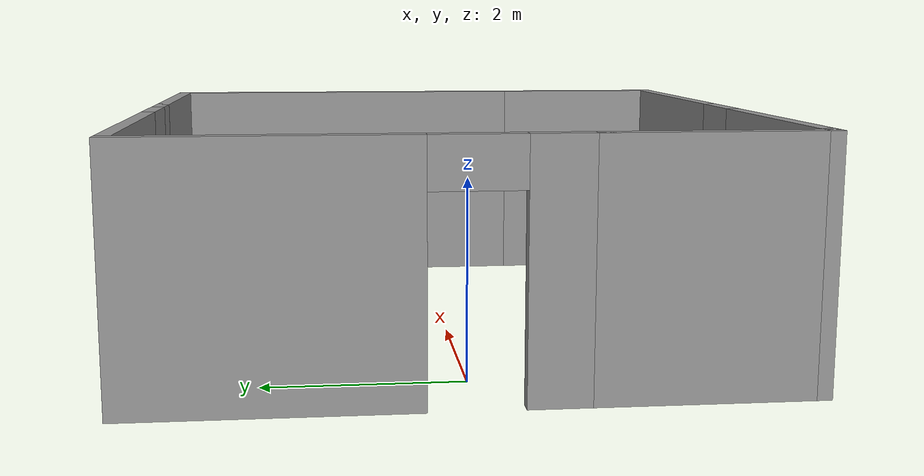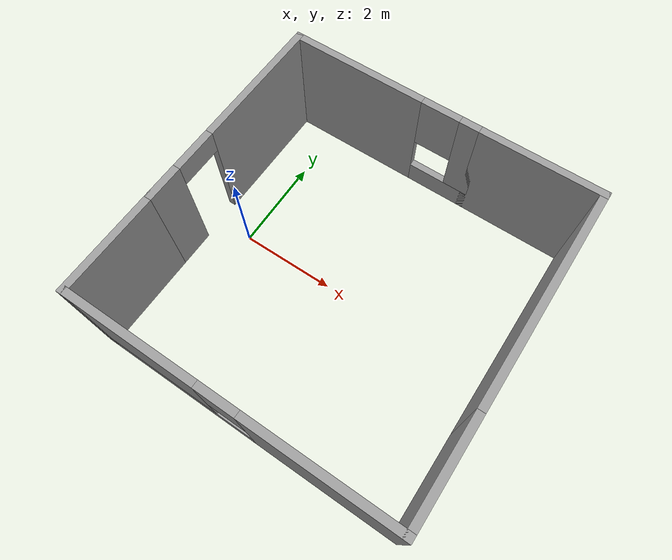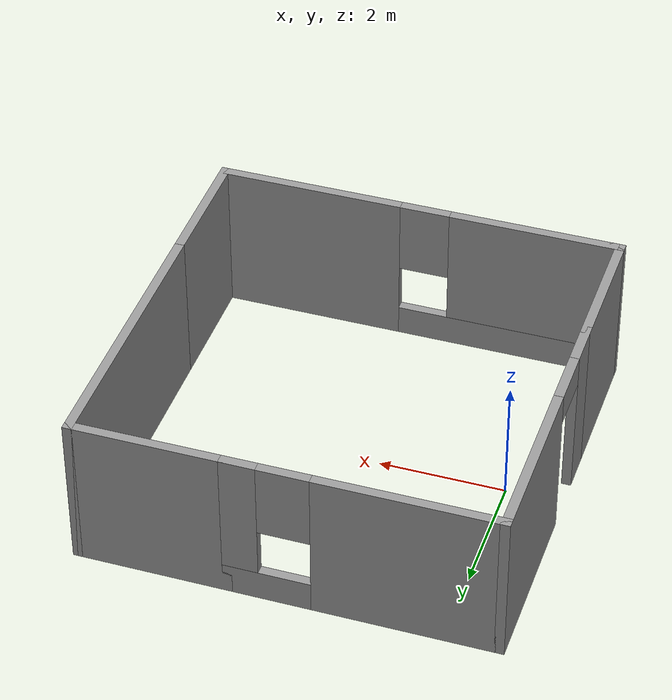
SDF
<?xml version='1.0'?>
<sdf version='1.7'>
  <model name='square_world'>
    <pose>2.395 0.005 0 0 -0 0</pose>
    <link name='Wall_1'>
      <pose>-3.225 1.05 0 0 -0 1.5708</pose>
      <visual name='Wall_1_Visual_0'>
        <pose>-1.86996 0 1.25 0 -0 0</pose>
        <geometry>
          <box>
            <size>0.760082 0.15 2.5</size>
          </box>
        </geometry>
        <material>
          <script>
            <uri>file://media/materials/scripts/gazebo.material</uri>
            <name>Gazebo/Grey</name>
          </script>
          <ambient>1 1 1 1</ambient>
        </material>
        <meta>
          <layer>0</layer>
        </meta>
      </visual>
      <collision name='Wall_1_Collision_0'>
        <geometry>
          <box>
            <size>0.760082 0.15 2.5</size>
          </box>
        </geometry>
        <pose>-1.86996 0 1.25 0 -0 0</pose>
      </collision>
      <visual name='Wall_1_Visual_1'>
        <pose>0.830041 0 1.25 0 -0 0</pose>
        <geometry>
          <box>
            <size>2.83992 0.15 2.5</size>
          </box>
        </geometry>
        <material>
          <script>
            <uri>file://media/materials/scripts/gazebo.material</uri>
            <name>Gazebo/Grey</name>
          </script>
          <ambient>1 1 1 1</ambient>
        </material>
        <meta>
          <layer>0</layer>
        </meta>
      </visual>
      <collision name='Wall_1_Collision_1'>
        <geometry>
          <box>
            <size>2.83992 0.15 2.5</size>
          </box>
        </geometry>
        <pose>0.830041 0 1.25 0 -0 0</pose>
      </collision>
      <visual name='Wall_1_Visual_2'>
        <pose>-1.03992 0 2.25 0 -0 0</pose>
        <geometry>
          <box>
            <size>0.9 0.15 0.5</size>
          </box>
        </geometry>
        <material>
          <script>
            <uri>file://media/materials/scripts/gazebo.material</uri>
            <name>Gazebo/Grey</name>
          </script>
          <ambient>1 1 1 1</ambient>
        </material>
        <meta>
          <layer>0</layer>
        </meta>
      </visual>
      <collision name='Wall_1_Collision_2'>
        <geometry>
          <box>
            <size>0.9 0.15 0.5</size>
          </box>
        </geometry>
        <pose>-1.03992 0 2.25 0 -0 0</pose>
      </collision>
    </link>
    <link name='Wall_2'>
      <pose>-1.175 3.225 0 0 -0 0</pose>
      <visual name='Wall_2_Visual_0'>
        <pose>-0.676675 0 1.25 0 -0 0</pose>
        <geometry>
          <box>
            <size>2.89665 0.15 2.5</size>
          </box>
        </geometry>
        <material>
          <script>
            <uri>file://media/materials/scripts/gazebo.material</uri>
            <name>Gazebo/Grey</name>
          </script>
          <ambient>1 1 1 1</ambient>
        </material>
        <meta>
          <layer>0</layer>
        </meta>
      </visual>
      <collision name='Wall_2_Collision_0'>
        <geometry>
          <box>
            <size>2.89665 0.15 2.5</size>
          </box>
        </geometry>
        <pose>-0.676675 0 1.25 0 -0 0</pose>
      </collision>
      <visual name='Wall_2_Visual_1'>
        <pose>1.44833 0 0.25 0 -0 0</pose>
        <geometry>
          <box>
            <size>1.35335 0.15 0.5</size>
          </box>
        </geometry>
        <material>
          <script>
            <uri>file://media/materials/scripts/gazebo.material</uri>
            <name>Gazebo/Grey</name>
          </script>
          <ambient>1 1 1 1</ambient>
        </material>
        <meta>
          <layer>0</layer>
        </meta>
      </visual>
      <collision name='Wall_2_Collision_1'>
        <geometry>
          <box>
            <size>1.35335 0.15 0.5</size>
          </box>
        </geometry>
        <pose>1.44833 0 0.25 0 -0 0</pose>
      </collision>
      <visual name='Wall_2_Visual_2'>
        <pose>1.84832 0 1.5 0 -0 0</pose>
        <geometry>
          <box>
            <size>0.553351 0.15 2</size>
          </box>
        </geometry>
        <material>
          <script>
            <uri>file://media/materials/scripts/gazebo.material</uri>
            <name>Gazebo/Grey</name>
          </script>
          <ambient>1 1 1 1</ambient>
        </material>
        <meta>
          <layer>0</layer>
        </meta>
      </visual>
      <collision name='Wall_2_Collision_2'>
        <geometry>
          <box>
            <size>0.553351 0.15 2</size>
          </box>
        </geometry>
        <pose>1.84832 0 1.5 0 -0 0</pose>
      </collision>
      <visual name='Wall_2_Visual_3'>
        <pose>1.17165 0 1.9 0 -0 0</pose>
        <geometry>
          <box>
            <size>0.8 0.15 1.2</size>
          </box>
        </geometry>
        <material>
          <script>
            <uri>file://media/materials/scripts/gazebo.material</uri>
            <name>Gazebo/Grey</name>
          </script>
          <ambient>1 1 1 1</ambient>
        </material>
        <meta>
          <layer>0</layer>
        </meta>
      </visual>
      <collision name='Wall_2_Collision_3'>
        <geometry>
          <box>
            <size>0.8 0.15 1.2</size>
          </box>
        </geometry>
        <pose>1.17165 0 1.9 0 -0 0</pose>
      </collision>
    </link>
    <link name='Wall_3'>
      <collision name='Wall_3_Collision'>
        <geometry>
          <box>
            <size>2.5 0.15 2.5</size>
          </box>
        </geometry>
        <pose>0 0 1.25 0 -0 0</pose>
      </collision>
      <visual name='Wall_3_Visual'>
        <pose>0 0 1.25 0 -0 0</pose>
        <geometry>
          <box>
            <size>2.5 0.15 2.5</size>
          </box>
        </geometry>
        <material>
          <script>
            <uri>file://media/materials/scripts/gazebo.material</uri>
            <name>Gazebo/Grey</name>
          </script>
          <ambient>1 1 1 1</ambient>
        </material>
        <meta>
          <layer>0</layer>
        </meta>
      </visual>
      <pose>2.05 3.225 0 0 -0 0</pose>
    </link>
    <link name='Wall_4'>
      <collision name='Wall_4_Collision'>
        <geometry>
          <box>
            <size>4.5 0.15 2.5</size>
          </box>
        </geometry>
        <pose>0 0 1.25 0 -0 0</pose>
      </collision>
      <visual name='Wall_4_Visual'>
        <pose>0 0 1.25 0 -0 0</pose>
        <geometry>
          <box>
            <size>4.5 0.15 2.5</size>
          </box>
        </geometry>
        <material>
          <script>
            <uri>file://media/materials/scripts/gazebo.material</uri>
            <name>Gazebo/Grey</name>
          </script>
          <ambient>1 1 1 1</ambient>
        </material>
        <meta>
          <layer>0</layer>
        </meta>
      </visual>
      <pose>3.225 1.05 0 0 -0 -1.5708</pose>
    </link>
    <link name='Wall_5'>
      <collision name='Wall_5_Collision'>
        <geometry>
          <box>
            <size>2.25 0.15 2.5</size>
          </box>
        </geometry>
        <pose>0 0 1.25 0 -0 0</pose>
      </collision>
      <visual name='Wall_5_Visual'>
        <pose>0 0 1.25 0 -0 0</pose>
        <geometry>
          <box>
            <size>2.25 0.15 2.5</size>
          </box>
        </geometry>
        <material>
          <script>
            <uri>file://media/materials/scripts/gazebo.material</uri>
            <name>Gazebo/Grey</name>
          </script>
          <ambient>1 1 1 1</ambient>
        </material>
        <meta>
          <layer>0</layer>
        </meta>
      </visual>
      <pose>3.225 -2.175 0 0 -0 -1.5708</pose>
    </link>
    <link name='Wall_6'>
      <pose>0.05 -3.225 0 0 -0 3.14159</pose>
      <visual name='Wall_6_Visual_0'>
        <pose>-1.74512 0 1.25 0 -0 0</pose>
        <geometry>
          <box>
            <size>3.00975 0.15 2.5</size>
          </box>
        </geometry>
        <material>
          <script>
            <uri>file://media/materials/scripts/gazebo.material</uri>
            <name>Gazebo/Grey</name>
          </script>
          <ambient>1 1 1 1</ambient>
        </material>
        <meta>
          <layer>0</layer>
        </meta>
      </visual>
      <collision name='Wall_6_Collision_0'>
        <geometry>
          <box>
            <size>3.00975 0.15 2.5</size>
          </box>
        </geometry>
        <pose>-1.74512 0 1.25 0 -0 0</pose>
      </collision>
      <visual name='Wall_6_Visual_1'>
        <pose>1.50488 0 0.25 0 -0 0</pose>
        <geometry>
          <box>
            <size>3.49025 0.15 0.5</size>
          </box>
        </geometry>
        <material>
          <script>
            <uri>file://media/materials/scripts/gazebo.material</uri>
            <name>Gazebo/Grey</name>
          </script>
          <ambient>1 1 1 1</ambient>
        </material>
        <meta>
          <layer>0</layer>
        </meta>
      </visual>
      <collision name='Wall_6_Collision_1'>
        <geometry>
          <box>
            <size>3.49025 0.15 0.5</size>
          </box>
        </geometry>
        <pose>1.50488 0 0.25 0 -0 0</pose>
      </collision>
      <visual name='Wall_6_Visual_2'>
        <pose>1.90488 0 1.5 0 -0 0</pose>
        <geometry>
          <box>
            <size>2.69025 0.15 2</size>
          </box>
        </geometry>
        <material>
          <script>
            <uri>file://media/materials/scripts/gazebo.material</uri>
            <name>Gazebo/Grey</name>
          </script>
          <ambient>1 1 1 1</ambient>
        </material>
        <meta>
          <layer>0</layer>
        </meta>
      </visual>
      <collision name='Wall_6_Collision_2'>
        <geometry>
          <box>
            <size>2.69025 0.15 2</size>
          </box>
        </geometry>
        <pose>1.90488 0 1.5 0 -0 0</pose>
      </collision>
      <visual name='Wall_6_Visual_3'>
        <pose>0.159751 0 1.9 0 -0 0</pose>
        <geometry>
          <box>
            <size>0.8 0.15 1.2</size>
          </box>
        </geometry>
        <material>
          <script>
            <uri>file://media/materials/scripts/gazebo.material</uri>
            <name>Gazebo/Grey</name>
          </script>
          <ambient>1 1 1 1</ambient>
        </material>
        <meta>
          <layer>0</layer>
        </meta>
      </visual>
      <collision name='Wall_6_Collision_3'>
        <geometry>
          <box>
            <size>0.8 0.15 1.2</size>
          </box>
        </geometry>
        <pose>0.159751 0 1.9 0 -0 0</pose>
      </collision>
    </link>
    <link name='Wall_7'>
      <collision name='Wall_7_Collision'>
        <geometry>
          <box>
            <size>0.25 0.15 2.5</size>
          </box>
        </geometry>
        <pose>0 0 1.25 0 -0 0</pose>
      </collision>
      <visual name='Wall_7_Visual'>
        <pose>0 0 1.25 0 -0 0</pose>
        <geometry>
          <box>
            <size>0.25 0.15 2.5</size>
          </box>
        </geometry>
        <material>
          <script>
            <uri>file://media/materials/scripts/gazebo.material</uri>
            <name>Gazebo/Grey</name>
          </script>
          <ambient>1 1 1 1</ambient>
        </material>
        <meta>
          <layer>0</layer>
        </meta>
      </visual>
      <pose>-3.175 -3.225 0 0 -0 3.14159</pose>
    </link>
    <link name='Wall_8'>
      <collision name='Wall_8_Collision'>
        <geometry>
          <box>
            <size>2.25 0.15 2.5</size>
          </box>
        </geometry>
        <pose>0 0 1.25 0 -0 0</pose>
      </collision>
      <visual name='Wall_8_Visual'>
        <pose>0 0 1.25 0 -0 0</pose>
        <geometry>
          <box>
            <size>2.25 0.15 2.5</size>
          </box>
        </geometry>
        <material>
          <script>
            <uri>file://media/materials/scripts/gazebo.material</uri>
            <name>Gazebo/Grey</name>
          </script>
          <ambient>1 1 1 1</ambient>
        </material>
        <meta>
          <layer>0</layer>
        </meta>
      </visual>
      <pose>-3.225 -2.175 0 0 -0 1.5708</pose>
    </link>
    <static>1</static>
  </model>
</sdf>
